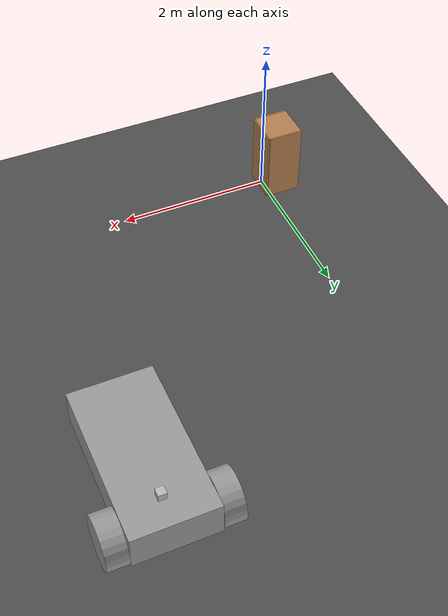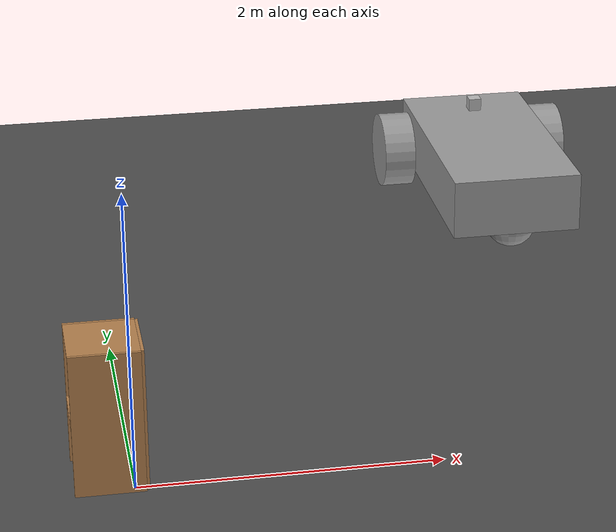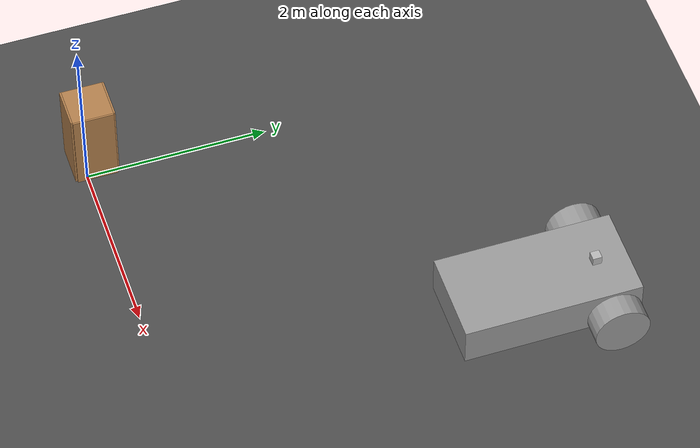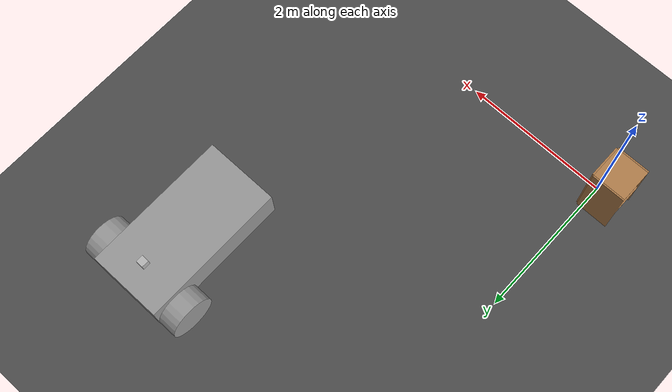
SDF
<sdf version="1.6">
 <world name="default">
  <model name="ground_plane">
   <static>1</static>
   <link name="link">
    <collision name="collision">
     <geometry><plane><normal>0 0 1</normal><size>100 100</size></plane></geometry>
     <surface><friction><ode><mu>100</mu><mu2>50</mu2></ode></friction></surface>
    </collision>
    <visual name="visual">
     <cast_shadows>0</cast_shadows>
     <geometry><plane><normal>0 0 1</normal><size>100 100</size></plane></geometry>
     <material>
      <script><uri>file://media/materials/scripts/gazebo.material</uri><name>Gazebo/Grey</name></script>
     </material>
    </visual>
   </link>
  </model>
  <model name="asphalt_plane">
   <static>1</static>
   <link name="link">
    <collision name="collision"><geometry><box><size>20 20 0.1</size></box></geometry></collision>
    <visual name="visual">
     <cast_shadows>0</cast_shadows>
     <geometry><box><size>20 20 0.1</size></box></geometry>
     <material>
      <script>
       <uri>model://asphalt_plane/materials/scripts</uri>
       <uri>model://asphalt_plane/materials/textures</uri>
       <name>vrc/asphalt</name>
      </script>
     </material>
    </visual>
   </link>
   <pose>0.008953 0.016686 0 0 -0 0</pose>
  </model>
  <model name="cabinet">
   <static>1</static>
   <link name="cabinet_bottom_plate">
    <inertial>
     <pose>0 0 -1 0 -0 0</pose>
     <inertia><ixx>2.05</ixx><ixy>0</ixy><ixz>0</ixz><iyy>2.05</iyy><iyz>0</iyz><izz>2.05</izz></inertia>
     <mass>25</mass>
    </inertial>
    <collision name="cabinet_bottom_plate_geom">
     <pose>0 0 0.01 0 -0 0</pose>
     <geometry><box><size>0.45 0.45 0.02</size></box></geometry>
    </collision>
    <visual name="cabinet_bottom_plate_geom_visual">
     <pose>0 0 0.01 0 -0 0</pose>
     <geometry><box><size>0.45 0.45 0.02</size></box></geometry>
     <material>
      <script><uri>file://media/materials/scripts/gazebo.material</uri><name>Gazebo/Wood</name></script>
     </material>
    </visual>
    <collision name="cabinet_bottom_plate_geom_cabinet_back_plate">
     <pose>0.235 0 0.51 0 -0 0</pose>
     <geometry><box><size>0.02 0.45 1.02</size></box></geometry>
    </collision>
    <visual name="cabinet_bottom_plate_geom_cabinet_back_plate_visual">
     <pose>0.235 0 0.51 0 -0 0</pose>
     <geometry><box><size>0.02 0.45 1.02</size></box></geometry>
     <material>
      <script><uri>file://media/materials/scripts/gazebo.material</uri><name>Gazebo/Wood</name></script>
     </material>
    </visual>
    <collision name="cabinet_bottom_plate_geom_cabinet_left_plate">
     <pose>0 0.235 0.51 0 -0 0</pose>
     <geometry><box><size>0.45 0.02 1.02</size></box></geometry>
    </collision>
    <visual name="cabinet_bottom_plate_geom_cabinet_left_plate_visual">
     <pose>0 0.235 0.51 0 -0 0</pose>
     <geometry><box><size>0.45 0.02 1.02</size></box></geometry>
     <material>
      <script><uri>file://media/materials/scripts/gazebo.material</uri><name>Gazebo/Wood</name></script>
     </material>
    </visual>
    <collision name="cabinet_bottom_plate_geom_cabinet_middle_plate">
     <pose>0 0 0.51 0 -0 0</pose>
     <geometry><box><size>0.45 0.45 0.02</size></box></geometry>
    </collision>
    <visual name="cabinet_bottom_plate_geom_cabinet_middle_plate_visual">
     <pose>0 0 0.51 0 -0 0</pose>
     <geometry><box><size>0.45 0.45 0.02</size></box></geometry>
     <material>
      <script><uri>file://media/materials/scripts/gazebo.material</uri><name>Gazebo/Wood</name></script>
     </material>
    </visual>
    <collision name="cabinet_bottom_plate_geom_cabinet_right_plate">
     <pose>0 -0.235 0.51 0 -0 0</pose>
     <geometry><box><size>0.45 0.02 1.02</size></box></geometry>
    </collision>
    <visual name="cabinet_bottom_plate_geom_cabinet_right_plate_visual">
     <pose>0 -0.235 0.51 0 -0 0</pose>
     <geometry><box><size>0.45 0.02 1.02</size></box></geometry>
     <material>
      <script><uri>file://media/materials/scripts/gazebo.material</uri><name>Gazebo/Wood</name></script>
     </material>
    </visual>
    <collision name="cabinet_bottom_plate_geom_cabinet_top_plate">
     <pose>0 0 1.01 0 -0 0</pose>
     <geometry><box><size>0.45 0.45 0.02</size></box></geometry>
    </collision>
    <visual name="cabinet_bottom_plate_geom_cabinet_top_plate_visual">
     <pose>0 0 1.01 0 -0 0</pose>
     <geometry><box><size>0.45 0.45 0.02</size></box></geometry>
     <material>
      <script><uri>file://media/materials/scripts/gazebo.material</uri><name>Gazebo/Wood</name></script>
     </material>
    </visual>
   </link>
   <pose>-0.159275 0.101354 0 0 -0 0</pose>
  </model>
  <model name="Robot_Structure">
   <link name="link">
    <inertial>
     <mass>1</mass>
     <inertia>
      <ixx>0.166667</ixx>
      <ixy>0</ixy>
      <ixz>0</ixz>
      <iyy>0.166667</iyy>
      <iyz>0</iyz>
      <izz>0.166667</izz>
     </inertia>
    </inertial>
    <pose>0 -0 0.4 0 -0 0</pose>
    <visual name="visual">
     <geometry><box><size>1.94174 1 0.456116</size></box></geometry>
     <material>
      <script><name>Gazebo/Grey</name><uri>file://media/materials/scripts/gazebo.material</uri></script>
      <shader type="vertex"><normal_map>__default__</normal_map></shader>
      <ambient>0.3 0.3 0.3 1</ambient>
      <diffuse>0.7 0.7 0.7 1</diffuse>
      <specular>0.01 0.01 0.01 1</specular>
      <emissive>0 0 0 1</emissive>
     </material>
    </visual>
    <collision name="collision">
     <geometry><box><size>1.94174 1 0.456116</size></box></geometry>
     <surface>
      <friction>
       <ode><mu>1</mu><mu2>1</mu2><fdir1>0 0 0</fdir1><slip1>0</slip1><slip2>0</slip2></ode>
       <torsional>
        <coefficient>1</coefficient>
        <patch_radius>0</patch_radius>
        <surface_radius>0</surface_radius>
        <use_patch_radius>1</use_patch_radius>
        <ode><slip>0</slip></ode>
       </torsional>
      </friction>
      <bounce><restitution_coefficient>0</restitution_coefficient><threshold>1e+06</threshold></bounce>
      <contact>
       <collide_without_contact>0</collide_without_contact>
       <collide_without_contact_bitmask>1</collide_without_contact_bitmask>
       <collide_bitmask>1</collide_bitmask>
       <ode>
        <soft_cfm>0</soft_cfm>
        <soft_erp>0.2</soft_erp>
        <kp>1e+13</kp>
        <kd>1</kd>
        <max_vel>0.01</max_vel>
        <min_depth>0</min_depth>
       </ode>
       <bullet>
        <split_impulse>1</split_impulse>
        <split_impulse_penetration_threshold>-0.01</split_impulse_penetration_threshold>
        <soft_cfm>0</soft_cfm>
        <soft_erp>0.2</soft_erp>
        <kp>1e+13</kp>
        <kd>1</kd>
       </bullet>
      </contact>
     </surface>
    </collision>
   </link>
   <link name="link_0">
    <inertial>
     <mass>1</mass>
     <inertia><ixx>0.145833</ixx><ixy>0</ixy><ixz>0</ixz><iyy>0.145833</iyy><iyz>0</iyz><izz>0.125</izz></inertia>
    </inertial>
    <pose>0.67087 0.640029 0.3 1.5707 -0 0</pose>
    <visual name="visual">
     <geometry><cylinder><radius>0.3</radius><length>0.25</length></cylinder></geometry>
     <material>
      <lighting>1</lighting>
      <script><uri>file://media/materials/scripts/gazebo.material</uri><name>Gazebo/Grey</name></script>
      <shader type="vertex"><normal_map>__default__</normal_map></shader>
      <ambient>0.3 0.3 0.3 1</ambient>
      <diffuse>0.7 0.7 0.7 1</diffuse>
      <specular>0.01 0.01 0.01 1</specular>
      <emissive>0 0 0 1</emissive>
     </material>
    </visual>
    <collision name="collision">
     <geometry><cylinder><radius>0.3</radius><length>0.25</length></cylinder></geometry>
     <surface>
      <friction>
       <ode><mu>1</mu><mu2>1</mu2><fdir1>0 0 0</fdir1><slip1>0</slip1><slip2>0</slip2></ode>
       <torsional>
        <coefficient>1</coefficient>
        <patch_radius>0</patch_radius>
        <surface_radius>0</surface_radius>
        <use_patch_radius>1</use_patch_radius>
        <ode><slip>0</slip></ode>
       </torsional>
      </friction>
      <bounce><restitution_coefficient>0</restitution_coefficient><threshold>1e+06</threshold></bounce>
      <contact>
       <collide_without_contact>0</collide_without_contact>
       <collide_without_contact_bitmask>1</collide_without_contact_bitmask>
       <collide_bitmask>1</collide_bitmask>
       <ode>
        <soft_cfm>0</soft_cfm>
        <soft_erp>0.2</soft_erp>
        <kp>1e+13</kp>
        <kd>1</kd>
        <max_vel>0.01</max_vel>
        <min_depth>0</min_depth>
       </ode>
       <bullet>
        <split_impulse>1</split_impulse>
        <split_impulse_penetration_threshold>-0.01</split_impulse_penetration_threshold>
        <soft_cfm>0</soft_cfm>
        <soft_erp>0.2</soft_erp>
        <kp>1e+13</kp>
        <kd>1</kd>
       </bullet>
      </contact>
     </surface>
    </collision>
   </link>
   <link name="link_0_clone">
    <inertial>
     <mass>1</mass>
     <inertia><ixx>0.145833</ixx><ixy>0</ixy><ixz>0</ixz><iyy>0.145833</iyy><iyz>0</iyz><izz>0.125</izz></inertia>
    </inertial>
    <pose>0.67087 -0.625029 0.3 1.5707 -0 0</pose>
    <visual name="visual">
     <geometry><cylinder><radius>0.3</radius><length>0.25</length></cylinder></geometry>
     <material>
      <lighting>1</lighting>
      <script><uri>file://media/materials/scripts/gazebo.material</uri><name>Gazebo/Grey</name></script>
      <shader type="vertex"><normal_map>__default__</normal_map></shader>
      <ambient>0.3 0.3 0.3 1</ambient>
      <diffuse>0.7 0.7 0.7 1</diffuse>
      <specular>0.01 0.01 0.01 1</specular>
      <emissive>0 0 0 1</emissive>
     </material>
    </visual>
    <collision name="collision">
     <geometry><cylinder><radius>0.3</radius><length>0.25</length></cylinder></geometry>
     <surface>
      <friction>
       <ode><mu>1</mu><mu2>1</mu2><fdir1>0 0 0</fdir1><slip1>0</slip1><slip2>0</slip2></ode>
       <torsional>
        <coefficient>1</coefficient>
        <patch_radius>0</patch_radius>
        <surface_radius>0</surface_radius>
        <use_patch_radius>1</use_patch_radius>
        <ode><slip>0</slip></ode>
       </torsional>
      </friction>
      <bounce><restitution_coefficient>0</restitution_coefficient><threshold>1e+06</threshold></bounce>
      <contact>
       <collide_without_contact>0</collide_without_contact>
       <collide_without_contact_bitmask>1</collide_without_contact_bitmask>
       <collide_bitmask>1</collide_bitmask>
       <ode>
        <soft_cfm>0</soft_cfm>
        <soft_erp>0.2</soft_erp>
        <kp>1e+13</kp>
        <kd>1</kd>
        <max_vel>0.01</max_vel>
        <min_depth>0</min_depth>
       </ode>
       <bullet>
        <split_impulse>1</split_impulse>
        <split_impulse_penetration_threshold>-0.01</split_impulse_penetration_threshold>
        <soft_cfm>0</soft_cfm>
        <soft_erp>0.2</soft_erp>
        <kp>1e+13</kp>
        <kd>1</kd>
       </bullet>
      </contact>
     </surface>
    </collision>
   </link>
   <link name="link_1">
    <inertial>
     <mass>1</mass>
     <inertia><ixx>0.1</ixx><ixy>0</ixy><ixz>0</ixz><iyy>0.1</iyy><iyz>0</iyz><izz>0.1</izz></inertia>
    </inertial>
    <pose>-0.77087 0 0.2 0 -0 0</pose>
    <visual name="visual">
     <geometry><sphere><radius>0.2</radius></sphere></geometry>
     <material>
      <lighting>1</lighting>
      <script><uri>file://media/materials/scripts/gazebo.material</uri><name>Gazebo/Grey</name></script>
      <shader type="vertex"><normal_map>__default__</normal_map></shader>
      <ambient>0.3 0.3 0.3 1</ambient>
      <diffuse>0.7 0.7 0.7 1</diffuse>
      <specular>0.01 0.01 0.01 1</specular>
      <emissive>0 0 0 1</emissive>
     </material>
    </visual>
    <collision name="collision">
     <geometry><sphere><radius>0.2</radius></sphere></geometry>
     <surface>
      <friction>
       <ode><mu>1</mu><mu2>1</mu2><fdir1>0 0 0</fdir1><slip1>0</slip1><slip2>0</slip2></ode>
       <torsional>
        <coefficient>1</coefficient>
        <patch_radius>0</patch_radius>
        <surface_radius>0</surface_radius>
        <use_patch_radius>1</use_patch_radius>
        <ode><slip>0</slip></ode>
       </torsional>
      </friction>
      <bounce><restitution_coefficient>0</restitution_coefficient><threshold>1e+06</threshold></bounce>
      <contact>
       <collide_without_contact>0</collide_without_contact>
       <collide_without_contact_bitmask>1</collide_without_contact_bitmask>
       <collide_bitmask>1</collide_bitmask>
       <ode>
        <soft_cfm>0</soft_cfm>
        <soft_erp>0.2</soft_erp>
        <kp>1e+13</kp>
        <kd>1</kd>
        <max_vel>0.01</max_vel>
        <min_depth>0</min_depth>
       </ode>
       <bullet>
        <split_impulse>1</split_impulse>
        <split_impulse_penetration_threshold>-0.01</split_impulse_penetration_threshold>
        <soft_cfm>0</soft_cfm>
        <soft_erp>0.2</soft_erp>
        <kp>1e+13</kp>
        <kd>1</kd>
       </bullet>
      </contact>
     </surface>
    </collision>
   </link>
   <model name="depth_camera">
    <link name="link">
     <pose>0 0 0.05 0 -0 0</pose>
     <inertial>
      <mass>0.1</mass>
      <inertia>
       <ixx>0.000166667</ixx>
       <iyy>0.000166667</iyy>
       <izz>0.000166667</izz>
       <ixy>0</ixy>
       <ixz>0</ixz>
       <iyz>0</iyz>
      </inertia>
     </inertial>
     <collision name="collision"><geometry><box><size>0.1 0.1 0.1</size></box></geometry></collision>
     <visual name="visual"><geometry><box><size>0.1 0.1 0.1</size></box></geometry></visual>
     <sensor name="camera" type="depth">
      <camera name="__default__">
       <horizontal_fov>1.047</horizontal_fov>
       <image><width>320</width><height>240</height></image>
       <clip><near>0.1</near><far>100</far></clip>
      </camera>
      <always_on>1</always_on>
      <update_rate>30</update_rate>
      <visualize>1</visualize>
     </sensor>
    </link>
    <pose>0.620772 -0.026703 0.630878 0 -0 0</pose>
   </model>
   <joint name="link_JOINT_0" type="revolute">
    <parent>link</parent>
    <child>link_0</child>
    <axis>
     <xyz>0 0 1</xyz>
     <use_parent_model_frame>0</use_parent_model_frame>
     <limit>
      <lower>-1.79769e+308</lower>
      <upper>1.79769e+308</upper>
      <effort>-1</effort>
      <velocity>-1</velocity>
     </limit>
     <dynamics>
      <spring_reference>0</spring_reference>
      <spring_stiffness>0</spring_stiffness>
      <damping>0</damping>
      <friction>0</friction>
     </dynamics>
    </axis>
    <physics>
     <ode><limit><cfm>0</cfm><erp>0.2</erp></limit><suspension><cfm>0</cfm><erp>0.2</erp></suspension></ode>
    </physics>
   </joint>
   <joint name="link_JOINT_1" type="revolute">
    <parent>link</parent>
    <child>link_0_clone</child>
    <axis>
     <xyz>0 0 1</xyz>
     <use_parent_model_frame>0</use_parent_model_frame>
     <limit>
      <lower>-1.79769e+308</lower>
      <upper>1.79769e+308</upper>
      <effort>-1</effort>
      <velocity>-1</velocity>
     </limit>
     <dynamics>
      <spring_reference>0</spring_reference>
      <spring_stiffness>0</spring_stiffness>
      <damping>0</damping>
      <friction>0</friction>
     </dynamics>
    </axis>
    <physics>
     <ode><limit><cfm>0</cfm><erp>0.2</erp></limit><suspension><cfm>0</cfm><erp>0.2</erp></suspension></ode>
    </physics>
   </joint>
   <joint name="link_JOINT_2" type="ball">
    <parent>link</parent>
    <child>link_1</child>
    <physics>
     <ode><limit><cfm>0</cfm><erp>0.2</erp></limit><suspension><cfm>0</cfm><erp>0.2</erp></suspension></ode>
    </physics>
   </joint>
   <joint name="link_JOINT_3" type="fixed">
    <parent>link</parent>
    <child>depth_camera::link</child>
    <physics>
     <ode><limit><cfm>0</cfm><erp>0.2</erp></limit><suspension><cfm>0</cfm><erp>0.2</erp></suspension></ode>
    </physics>
   </joint>
   <static>0</static>
   <plugin name="follower" filename="libFollowerPlugin.so"/>
   <pose>3.24759 3.95524 0.050012 1.1e-05 -1e-05 1.5708</pose>
  </model>
 </world>
</sdf>
